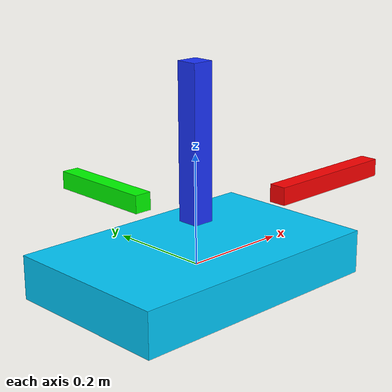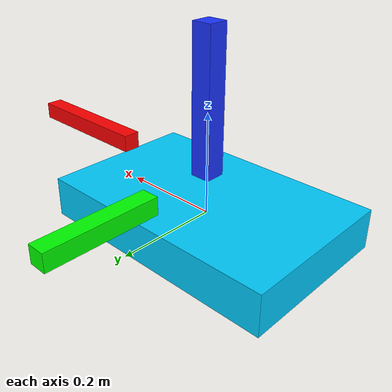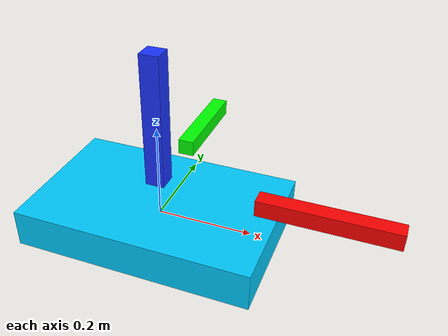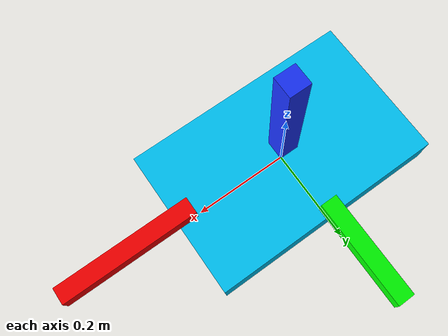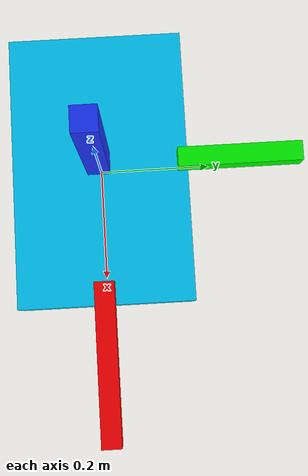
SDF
<?xml version="1.0"?>
<sdf version="1.6">
  <model name="mpu6050">
    <static>true</static>
    <link name="mpu6050_link">
      <pose>0 0 0 0 0 0</pose>
      <inertial>
        <mass>0.02</mass>
        <inertia>
          <ixx>1e-5</ixx>
          <ixy>0</ixy>
          <ixz>0</ixz>
          <iyy>1e-5</iyy>
          <iyz>0</iyz>
          <izz>1e-5</izz>
        </inertia>
      </inertial>
      <collision name="mpu6050_collision">
        <geometry>
          <box>
            <size>0.5 0.32 0.08</size>
          </box>
        </geometry>
      </collision>
      <visual name="mpu6050_visual">
        <geometry>
          <box>
            <size>0.5 0.32 0.08</size>
          </box>
        </geometry>
        <material>
          <ambient>0.0 0.8 1.0 1</ambient>
          <diffuse>0.0 0.8 1.0 1</diffuse>
          <specular>0.2 0.2 0.2 1</specular>
        </material>
      </visual>
      <visual name="x_axis_visual">
        <pose>0.35 0 0.08 0 0 0</pose>
        <geometry>
          <box>
            <size>0.28 0.035 0.035</size>
          </box>
        </geometry>
        <material>
          <ambient>1 0 0 1</ambient>
          <diffuse>1 0 0 1</diffuse>
        </material>
      </visual>
      <visual name="y_axis_visual">
        <pose>0 0.25 0.08 0 0 0</pose>
        <geometry>
          <box>
            <size>0.035 0.22 0.035</size>
          </box>
        </geometry>
        <material>
          <ambient>0 1 0 1</ambient>
          <diffuse>0 1 0 1</diffuse>
        </material>
      </visual>
      <visual name="z_axis_visual">
        <pose>0 0 0.22 0 0 0</pose>
        <geometry>
          <box>
            <size>0.04 0.04 0.28</size>
          </box>
        </geometry>
        <material>
          <ambient>0.1 0.2 1 1</ambient>
          <diffuse>0.1 0.2 1 1</diffuse>
        </material>
      </visual>
      <sensor name="imu_sensor" type="imu">
        <always_on>1</always_on>
        <update_rate>100</update_rate>
        <imu>
          <angular_velocity>
            <x>
              <noise type="gaussian">
                <mean>0.0</mean>
                <stddev>0.01</stddev>  <!-- Approximate noise for MPU6050 gyro -->
              </noise>
            </x>
            <y>
              <noise type="gaussian">
                <mean>0.0</mean>
                <stddev>0.01</stddev>
              </noise>
            </y>
            <z>
              <noise type="gaussian">
                <mean>0.0</mean>
                <stddev>0.01</stddev>
              </noise>
            </z>
          </angular_velocity>
          <linear_acceleration>
            <x>
              <noise type="gaussian">
                <mean>0.0</mean>
                <stddev>0.1</stddev>  <!-- Approximate noise for MPU6050 accel -->
              </noise>
            </x>
            <y>
              <noise type="gaussian">
                <mean>0.0</mean>
                <stddev>0.1</stddev>
              </noise>
            </y>
            <z>
              <noise type="gaussian">
                <mean>0.0</mean>
                <stddev>0.1</stddev>
              </noise>
            </z>
          </linear_acceleration>
        </imu>
      </sensor>
    </link>
  </model>
</sdf>
